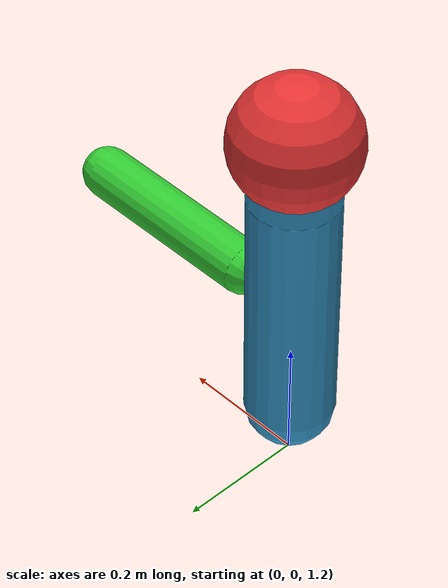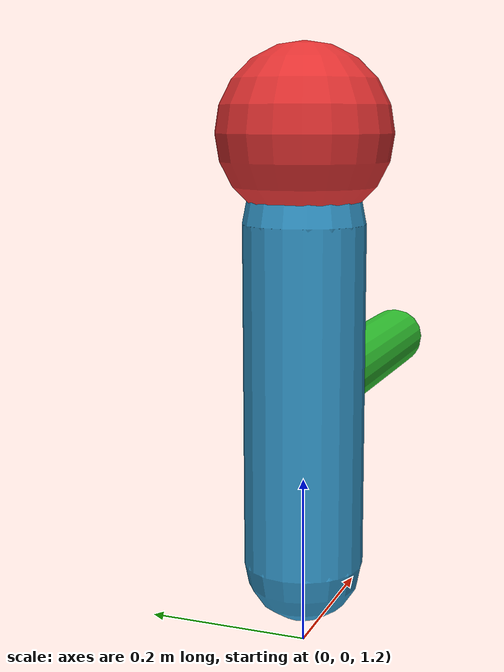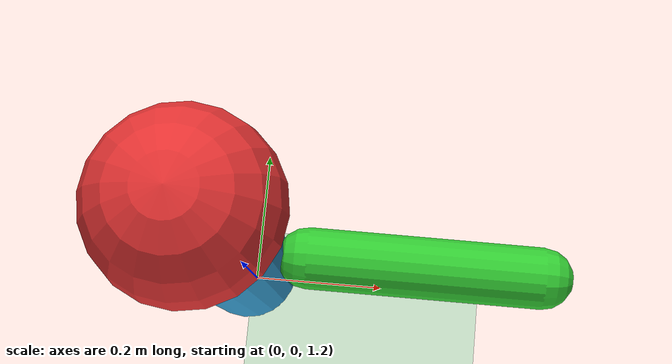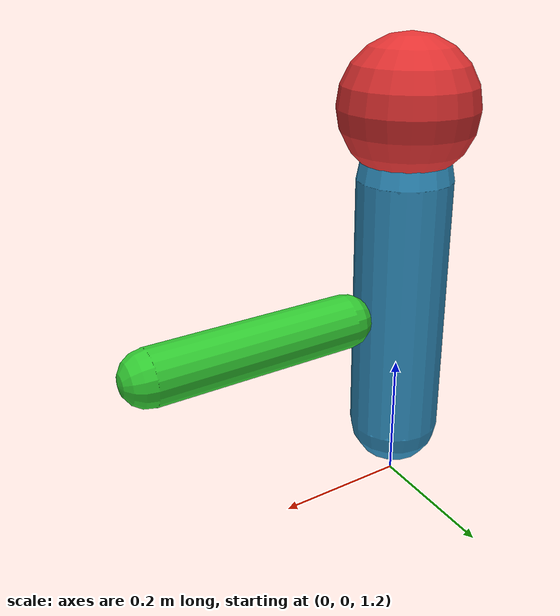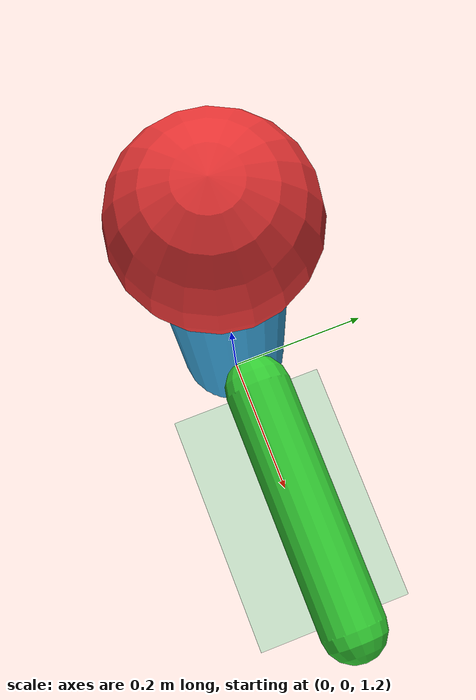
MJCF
<mujoco>
<option timestep="0.005" gravity="0 0 -9.81"/>
<worldbody>
<light pos="0 0 3"/>
<geom name="floor" type="plane" size="5 5 .05" rgba=".8 .9 .8 1"/>
<body name="torso" pos="0 0 1.5">
<freejoint/>
<geom name="torso_geom" type="capsule" size="0.07 0.2" rgba=".2 .6 .8 1"/>
<body name="head" pos="0 0 .3">
<geom type="sphere" size=".1" rgba=".9 .2 .2 1"/>
</body>
<body name="arm" pos=".1 0 0">
<joint name="shoulder" type="hinge" axis="0 1 0"/>
<geom type="capsule" size="0.04 0.3" fromto="0 0 0 .3 0 0" rgba=".2 .8 .2 1"/>
</body>
</body>
</worldbody>
<actuator>
<motor joint="shoulder" ctrlrange="-100 100" ctrllimited="true"/>
</actuator>
</mujoco>
